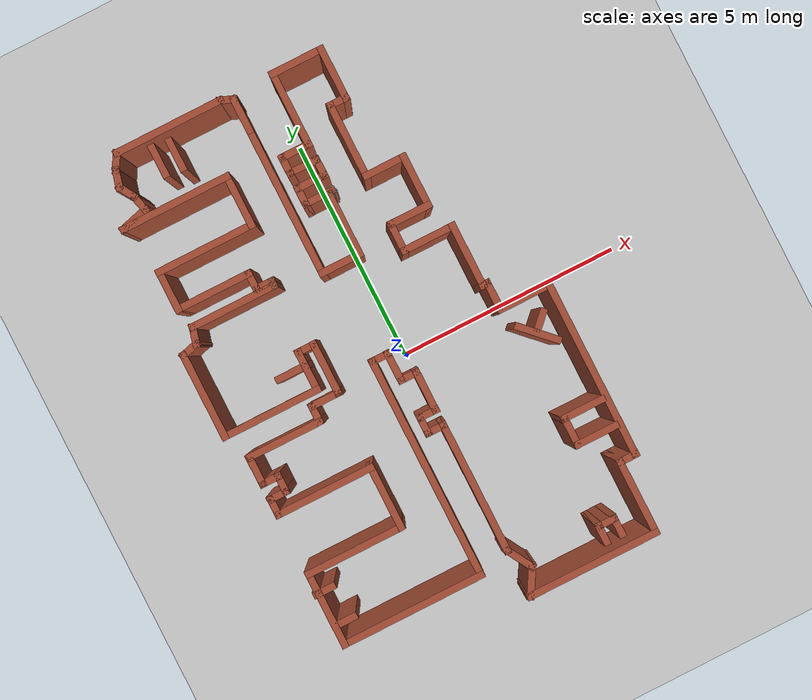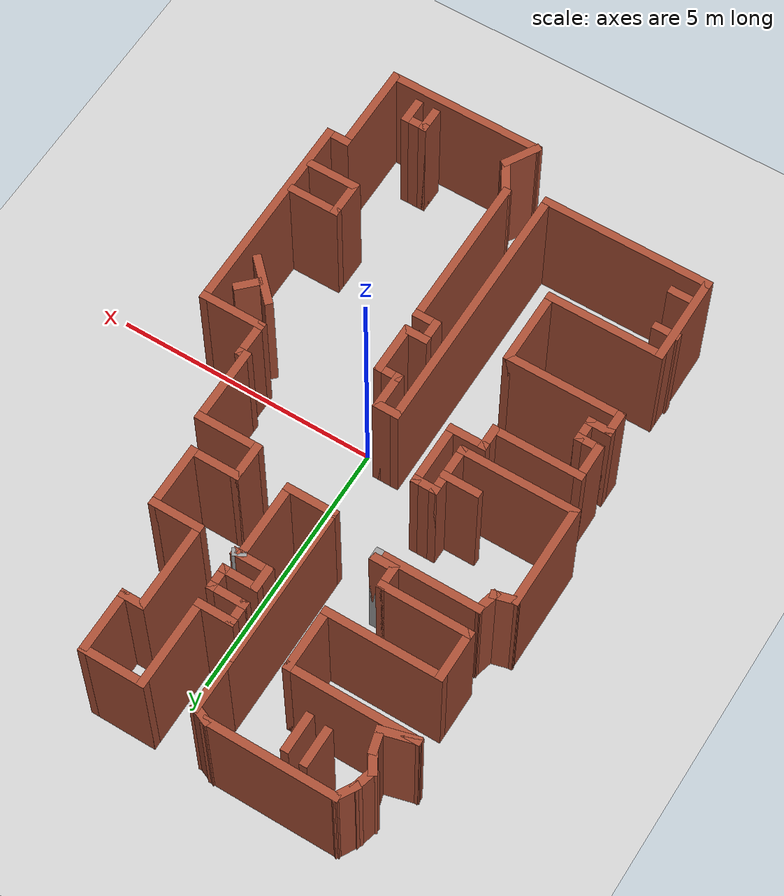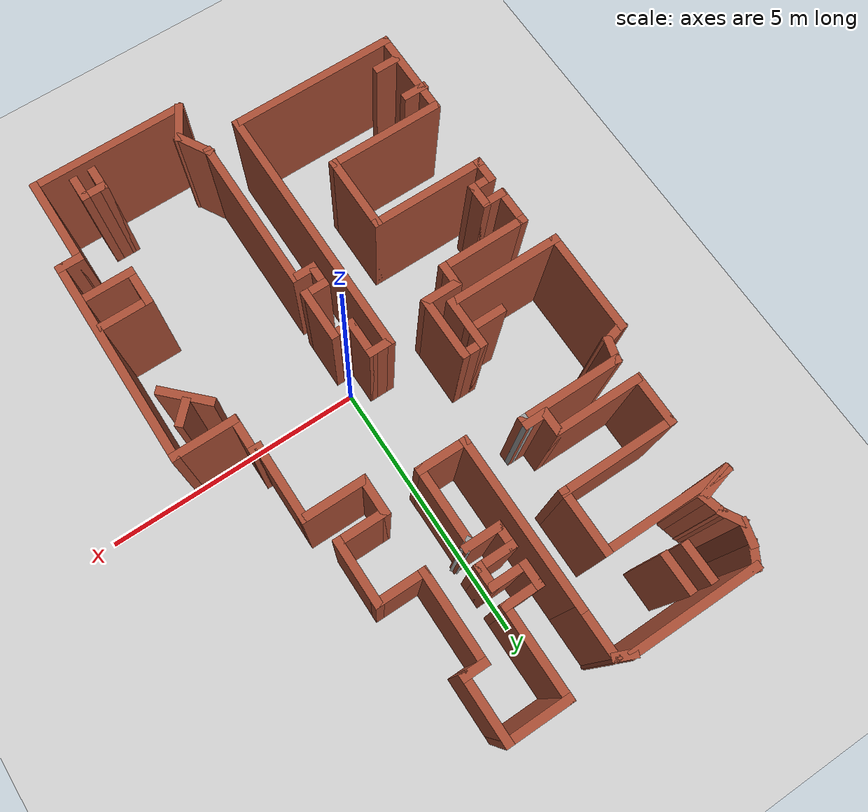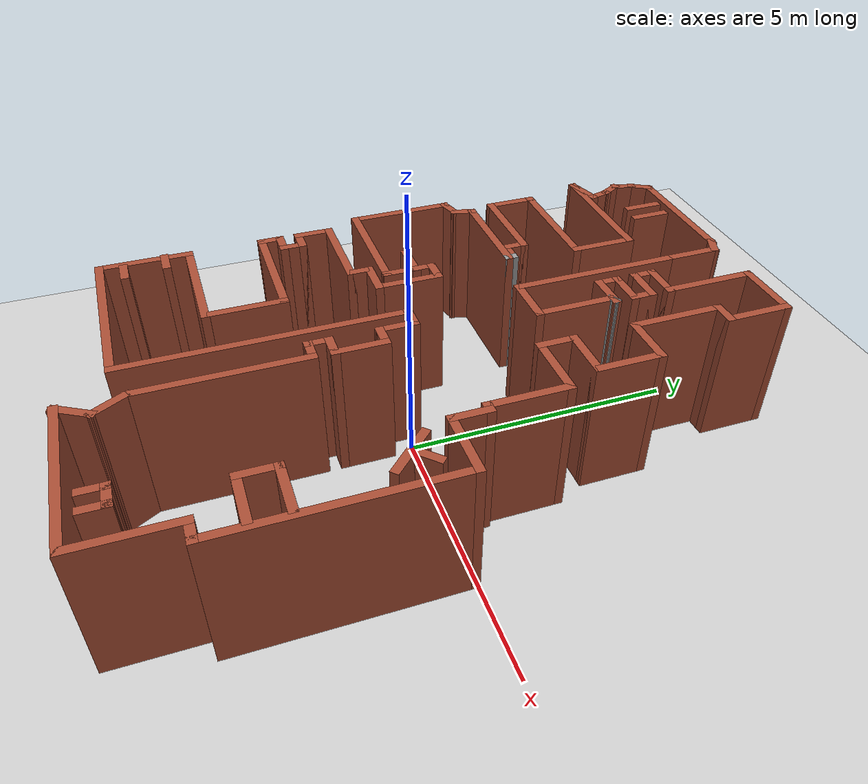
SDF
<sdf version="1.6">
 <world name="default">
  <model name="ground_plane">
   <static>1</static>
   <link name="link">
    <collision name="collision">
     <geometry><plane><normal>0 0 1</normal><size>100 100</size></plane></geometry>
     <surface>
      <contact><collide_bitmask>65535</collide_bitmask></contact>
      <friction><ode><mu>100</mu><mu2>50</mu2></ode></friction>
     </surface>
    </collision>
    <visual name="visual">
     <cast_shadows>0</cast_shadows>
     <geometry><plane><normal>0 0 1</normal><size>100 100</size></plane></geometry>
     <material>
      <script><uri>file://media/materials/scripts/gazebo.material</uri><name>Gazebo/Grey</name></script>
     </material>
    </visual>
   </link>
  </model>
  <model name="map_23">
   <pose>-0.42005 0.4067 0 0 -0 0</pose>
   <link name="Wall_10">
    <collision name="Wall_10_Collision">
     <geometry><box><size>0.5 0.15 2.5</size></box></geometry>
     <pose>0 0 1.25 0 -0 0</pose>
    </collision>
    <visual name="Wall_10_Visual">
     <pose>0 0 1.25 0 -0 0</pose>
     <geometry><box><size>0.5 0.15 2.5</size></box></geometry>
     <material>
      <script><uri>file://media/materials/scripts/gazebo.material</uri><name>Gazebo/Bricks</name></script>
      <ambient>1 1 1 1</ambient>
     </material>
     <meta><layer>0</layer></meta>
    </visual>
    <pose>-3.17865 5.43063 0 0 -0 -1.8326</pose>
   </link>
   <link name="Wall_100">
    <collision name="Wall_100_Collision">
     <geometry><box><size>0.426148 0.15 2.5</size></box></geometry>
     <pose>0 0 1.25 0 -0 0</pose>
    </collision>
    <visual name="Wall_100_Visual">
     <pose>0 0 1.25 0 -0 0</pose>
     <geometry><box><size>0.426148 0.15 2.5</size></box></geometry>
     <material>
      <script><uri>file://media/materials/scripts/gazebo.material</uri><name>Gazebo/Bricks</name></script>
      <ambient>1 1 1 1</ambient>
     </material>
     <meta><layer>0</layer></meta>
    </visual>
    <pose>-0.480765 5.85 0 0 -0 2.7494</pose>
   </link>
   <link name="Wall_102">
    <collision name="Wall_102_Collision">
     <geometry><box><size>0.5 0.15 2.5</size></box></geometry>
     <pose>0 0 1.25 0 -0 0</pose>
    </collision>
    <visual name="Wall_102_Visual">
     <pose>0 0 1.25 0 -0 0</pose>
     <geometry><box><size>0.5 0.15 2.5</size></box></geometry>
     <material>
      <script><uri>file://media/materials/scripts/gazebo.material</uri><name>Gazebo/Bricks</name></script>
      <ambient>1 1 1 1</ambient>
     </material>
     <meta><layer>0</layer></meta>
    </visual>
    <pose>2.3061 -5.44127 0 0 -0 1.5708</pose>
   </link>
   <link name="Wall_103">
    <collision name="Wall_103_Collision">
     <geometry><box><size>0.5 0.15 2.5</size></box></geometry>
     <pose>0 0 1.25 0 -0 0</pose>
    </collision>
    <visual name="Wall_103_Visual">
     <pose>0 0 1.25 0 -0 0</pose>
     <geometry><box><size>0.5 0.15 2.5</size></box></geometry>
     <material>
      <script><uri>file://media/materials/scripts/gazebo.material</uri><name>Gazebo/Bricks</name></script>
      <ambient>1 1 1 1</ambient>
     </material>
     <meta><layer>0</layer></meta>
    </visual>
    <pose>2.4811 -5.26627 0 0 -0 0</pose>
   </link>
   <link name="Wall_104">
    <collision name="Wall_104_Collision">
     <geometry><box><size>0.5 0.15 2.5</size></box></geometry>
     <pose>0 0 1.25 0 -0 0</pose>
    </collision>
    <visual name="Wall_104_Visual">
     <pose>0 0 1.25 0 -0 0</pose>
     <geometry><box><size>0.5 0.15 2.5</size></box></geometry>
     <material>
      <script><uri>file://media/materials/scripts/gazebo.material</uri><name>Gazebo/Bricks</name></script>
      <ambient>1 1 1 1</ambient>
     </material>
     <meta><layer>0</layer></meta>
    </visual>
    <pose>2.6561 -5.44127 0 0 -0 -1.5708</pose>
   </link>
   <link name="Wall_106">
    <collision name="Wall_106_Collision">
     <geometry><box><size>1 0.15 2.5</size></box></geometry>
     <pose>0 0 1.25 0 -0 0</pose>
    </collision>
    <visual name="Wall_106_Visual">
     <pose>0 0 1.25 0 -0 0</pose>
     <geometry><box><size>1 0.15 2.5</size></box></geometry>
     <material>
      <script><uri>file://media/materials/scripts/gazebo.material</uri><name>Gazebo/Bricks</name></script>
      <ambient>1 1 1 1</ambient>
     </material>
     <meta><layer>0</layer></meta>
    </visual>
    <pose>3.10702 -3.00251 0 0 -0 3.14159</pose>
   </link>
   <link name="Wall_107">
    <collision name="Wall_107_Collision">
     <geometry><box><size>0.75 0.15 2.5</size></box></geometry>
     <pose>0 0 1.25 0 -0 0</pose>
    </collision>
    <visual name="Wall_107_Visual">
     <pose>0 0 1.25 0 -0 0</pose>
     <geometry><box><size>0.75 0.15 2.5</size></box></geometry>
     <material>
      <script><uri>file://media/materials/scripts/gazebo.material</uri><name>Gazebo/Bricks</name></script>
      <ambient>1 1 1 1</ambient>
     </material>
     <meta><layer>0</layer></meta>
    </visual>
    <pose>2.68202 -3.30251 0 0 -0 -1.5708</pose>
   </link>
   <link name="Wall_108">
    <collision name="Wall_108_Collision">
     <geometry><box><size>1 0.15 2.5</size></box></geometry>
     <pose>0 0 1.25 0 -0 0</pose>
    </collision>
    <visual name="Wall_108_Visual">
     <pose>0 0 1.25 0 -0 0</pose>
     <geometry><box><size>1 0.15 2.5</size></box></geometry>
     <material>
      <script><uri>file://media/materials/scripts/gazebo.material</uri><name>Gazebo/Bricks</name></script>
      <ambient>1 1 1 1</ambient>
     </material>
     <meta><layer>0</layer></meta>
    </visual>
    <pose>3.10702 -3.60251 0 0 -0 0</pose>
   </link>
   <link name="Wall_11">
    <collision name="Wall_11_Collision">
     <geometry><box><size>0.5 0.15 2.5</size></box></geometry>
     <pose>0 0 1.25 0 -0 0</pose>
    </collision>
    <visual name="Wall_11_Visual">
     <pose>0 0 1.25 0 -0 0</pose>
     <geometry><box><size>0.5 0.15 2.5</size></box></geometry>
     <material>
      <script><uri>file://media/materials/scripts/gazebo.material</uri><name>Gazebo/Bricks</name></script>
      <ambient>1 1 1 1</ambient>
     </material>
     <meta><layer>0</layer></meta>
    </visual>
    <pose>-3.13644 5.11004 0 0 -0 -1.0472</pose>
   </link>
   <link name="Wall_110">
    <collision name="Wall_110_Collision">
     <geometry><box><size>0.5 0.15 2.5</size></box></geometry>
     <pose>0 0 1.25 0 -0 0</pose>
    </collision>
    <visual name="Wall_110_Visual">
     <pose>0 0 1.25 0 -0 0</pose>
     <geometry><box><size>0.5 0.15 2.5</size></box></geometry>
     <material>
      <script><uri>file://media/materials/scripts/gazebo.material</uri><name>Gazebo/Bricks</name></script>
      <ambient>1 1 1 1</ambient>
     </material>
     <meta><layer>0</layer></meta>
    </visual>
    <pose>-3.23216 -3.9046 0 0 -0 0</pose>
   </link>
   <link name="Wall_112">
    <collision name="Wall_112_Collision">
     <geometry><box><size>0.5 0.15 2.5</size></box></geometry>
     <pose>0 0 1.25 0 -0 0</pose>
    </collision>
    <visual name="Wall_112_Visual">
     <pose>0 0 1.25 0 -0 0</pose>
     <geometry><box><size>0.5 0.15 2.5</size></box></geometry>
     <material>
      <script><uri>file://media/materials/scripts/gazebo.material</uri><name>Gazebo/Bricks</name></script>
      <ambient>1 1 1 1</ambient>
     </material>
     <meta><layer>0</layer></meta>
    </visual>
    <pose>-3.11651 -4.64478 0 0 -0 0</pose>
   </link>
   <link name="Wall_116">
    <collision name="Wall_116_Collision">
     <geometry><box><size>0.75 0.15 2.5</size></box></geometry>
     <pose>0 0 1.25 0 -0 0</pose>
    </collision>
    <visual name="Wall_116_Visual">
     <pose>0 0 1.25 0 -0 0</pose>
     <geometry><box><size>0.75 0.15 2.5</size></box></geometry>
     <material>
      <script><uri>file://media/materials/scripts/gazebo.material</uri><name>Gazebo/Bricks</name></script>
      <ambient>1 1 1 1</ambient>
     </material>
     <meta><layer>0</layer></meta>
    </visual>
    <pose>-1.81045 0.328298 0 0 -0 3.14159</pose>
   </link>
   <link name="Wall_12">
    <collision name="Wall_12_Collision">
     <geometry><box><size>0.5 0.15 2.5</size></box></geometry>
     <pose>0 0 1.25 0 -0 0</pose>
    </collision>
    <visual name="Wall_12_Visual">
     <pose>0 0 1.25 0 -0 0</pose>
     <geometry><box><size>0.5 0.15 2.5</size></box></geometry>
     <material>
      <script><uri>file://media/materials/scripts/gazebo.material</uri><name>Gazebo/Bricks</name></script>
      <ambient>1 1 1 1</ambient>
     </material>
     <meta><layer>0</layer></meta>
    </visual>
    <pose>-3.00365 4.78944 0 0 -0 -1.309</pose>
   </link>
   <link name="Wall_120">
    <collision name="Wall_120_Collision">
     <geometry><box><size>0.75 0.15 2.5</size></box></geometry>
     <pose>0 0 1.25 0 -0 0</pose>
    </collision>
    <visual name="Wall_120_Visual">
     <pose>0 0 1.25 0 -0 0</pose>
     <geometry><box><size>0.75 0.15 2.5</size></box></geometry>
     <material>
      <script><uri>file://media/materials/scripts/gazebo.material</uri><name>Gazebo/Bricks</name></script>
      <ambient>1 1 1 1</ambient>
     </material>
     <meta><layer>0</layer></meta>
    </visual>
    <pose>-2.27376 5.37147 0 0 -0 -1.5708</pose>
   </link>
   <link name="Wall_122">
    <collision name="Wall_122_Collision">
     <geometry><box><size>0.75 0.15 2.5</size></box></geometry>
     <pose>0 0 1.25 0 -0 0</pose>
    </collision>
    <visual name="Wall_122_Visual">
     <pose>0 0 1.25 0 -0 0</pose>
     <geometry><box><size>0.75 0.15 2.5</size></box></geometry>
     <material>
      <script><uri>file://media/materials/scripts/gazebo.material</uri><name>Gazebo/Bricks</name></script>
      <ambient>1 1 1 1</ambient>
     </material>
     <meta><layer>0</layer></meta>
    </visual>
    <pose>-1.90367 5.32521 0 0 -0 -1.5708</pose>
   </link>
   <link name="Wall_124">
    <collision name="Wall_124_Collision">
     <geometry><box><size>1 0.15 2.5</size></box></geometry>
     <pose>0 0 1.25 0 -0 0</pose>
    </collision>
    <visual name="Wall_124_Visual">
     <pose>0 0 1.25 0 -0 0</pose>
     <geometry><box><size>1 0.15 2.5</size></box></geometry>
     <material>
      <script><uri>file://media/materials/scripts/gazebo.material</uri><name>Gazebo/Bricks</name></script>
      <ambient>1 1 1 1</ambient>
     </material>
     <meta><layer>0</layer></meta>
    </visual>
    <pose>2.98805 -1.22193 0 0 -0 -0.785398</pose>
   </link>
   <link name="Wall_126">
    <collision name="Wall_126_Collision">
     <geometry><box><size>0.5 0.15 2.5</size></box></geometry>
     <pose>0 0 1.25 0 -0 0</pose>
    </collision>
    <visual name="Wall_126_Visual">
     <pose>0 0 1.25 0 -0 0</pose>
     <geometry><box><size>0.5 0.15 2.5</size></box></geometry>
     <material>
      <script><uri>file://media/materials/scripts/gazebo.material</uri><name>Gazebo/Bricks</name></script>
      <ambient>1 1 1 1</ambient>
     </material>
     <meta><layer>0</layer></meta>
    </visual>
    <pose>3.15707 -1.01047 0 0 -0 0.785398</pose>
   </link>
   <link name="Wall_13">
    <collision name="Wall_13_Collision">
     <geometry><box><size>0.75 0.15 2.5</size></box></geometry>
     <pose>0 0 1.25 0 -0 0</pose>
    </collision>
    <visual name="Wall_13_Visual">
     <pose>0 0 1.25 0 -0 0</pose>
     <geometry><box><size>0.75 0.15 2.5</size></box></geometry>
     <material>
      <script><uri>file://media/materials/scripts/gazebo.material</uri><name>Gazebo/Bricks</name></script>
      <ambient>1 1 1 1</ambient>
     </material>
     <meta><layer>0</layer></meta>
    </visual>
    <pose>-3.24813 4.54276 0 0 -0 -2.87979</pose>
   </link>
   <link name="Wall_14">
    <collision name="Wall_14_Collision">
     <geometry><box><size>2.5 0.15 2.5</size></box></geometry>
     <pose>0 0 1.25 0 -0 0</pose>
    </collision>
    <visual name="Wall_14_Visual">
     <pose>0 0 1.25 0 -0 0</pose>
     <geometry><box><size>2.5 0.15 2.5</size></box></geometry>
     <material>
      <script><uri>file://media/materials/scripts/gazebo.material</uri><name>Gazebo/Bricks</name></script>
      <ambient>1 1 1 1</ambient>
     </material>
     <meta><layer>0</layer></meta>
    </visual>
    <pose>-2.36291 4.46512 0 0 -0 0</pose>
   </link>
   <link name="Wall_15">
    <collision name="Wall_15_Collision">
     <geometry><box><size>1.25 0.15 2.5</size></box></geometry>
     <pose>0 0 1.25 0 -0 0</pose>
    </collision>
    <visual name="Wall_15_Visual">
     <pose>0 0 1.25 0 -0 0</pose>
     <geometry><box><size>1.25 0.15 2.5</size></box></geometry>
     <material>
      <script><uri>file://media/materials/scripts/gazebo.material</uri><name>Gazebo/Bricks</name></script>
      <ambient>1 1 1 1</ambient>
     </material>
     <meta><layer>0</layer></meta>
    </visual>
    <pose>-1.18791 3.91512 0 0 -0 -1.5708</pose>
   </link>
   <link name="Wall_16">
    <collision name="Wall_16_Collision">
     <geometry><box><size>2.25 0.15 2.5</size></box></geometry>
     <pose>0 0 1.25 0 -0 0</pose>
    </collision>
    <visual name="Wall_16_Visual">
     <pose>0 0 1.25 0 -0 0</pose>
     <geometry><box><size>2.25 0.15 2.5</size></box></geometry>
     <material>
      <script><uri>file://media/materials/scripts/gazebo.material</uri><name>Gazebo/Bricks</name></script>
      <ambient>1 1 1 1</ambient>
     </material>
     <meta><layer>0</layer></meta>
    </visual>
    <pose>-2.23791 3.36512 0 0 -0 3.14159</pose>
   </link>
   <link name="Wall_19">
    <collision name="Wall_19_Collision">
     <geometry><box><size>1 0.15 2.5</size></box></geometry>
     <pose>0 0 1.25 0 -0 0</pose>
    </collision>
    <visual name="Wall_19_Visual">
     <pose>0 0 1.25 0 -0 0</pose>
     <geometry><box><size>1 0.15 2.5</size></box></geometry>
     <material>
      <script><uri>file://media/materials/scripts/gazebo.material</uri><name>Gazebo/Bricks</name></script>
      <ambient>1 1 1 1</ambient>
     </material>
     <meta><layer>0</layer></meta>
    </visual>
    <pose>-3.28791 2.94012 0 0 -0 -1.5708</pose>
   </link>
   <link name="Wall_20">
    <collision name="Wall_20_Collision">
     <geometry><box><size>1.75 0.15 2.5</size></box></geometry>
     <pose>0 0 1.25 0 -0 0</pose>
    </collision>
    <visual name="Wall_20_Visual">
     <pose>0 0 1.25 0 -0 0</pose>
     <geometry><box><size>1.75 0.15 2.5</size></box></geometry>
     <material>
      <script><uri>file://media/materials/scripts/gazebo.material</uri><name>Gazebo/Bricks</name></script>
      <ambient>1 1 1 1</ambient>
     </material>
     <meta><layer>0</layer></meta>
    </visual>
    <pose>-2.48791 2.51512 0 0 -0 0</pose>
   </link>
   <link name="Wall_21">
    <collision name="Wall_21_Collision">
     <geometry><box><size>0.5 0.15 2.5</size></box></geometry>
     <pose>0 0 1.25 0 -0 0</pose>
    </collision>
    <visual name="Wall_21_Visual">
     <pose>0 0 1.25 0 -0 0</pose>
     <geometry><box><size>0.5 0.15 2.5</size></box></geometry>
     <material>
      <script><uri>file://media/materials/scripts/gazebo.material</uri><name>Gazebo/Bricks</name></script>
      <ambient>1 1 1 1</ambient>
     </material>
     <meta><layer>0</layer></meta>
    </visual>
    <pose>-1.68791 2.34012 0 0 -0 -1.5708</pose>
   </link>
   <link name="Wall_22">
    <collision name="Wall_22_Collision">
     <geometry><box><size>0.5 0.15 2.5</size></box></geometry>
     <pose>0 0 1.25 0 -0 0</pose>
    </collision>
    <visual name="Wall_22_Visual">
     <pose>0 0 1.25 0 -0 0</pose>
     <geometry><box><size>0.5 0.15 2.5</size></box></geometry>
     <material>
      <script><uri>file://media/materials/scripts/gazebo.material</uri><name>Gazebo/Bricks</name></script>
      <ambient>1 1 1 1</ambient>
     </material>
     <meta><layer>0</layer></meta>
    </visual>
    <pose>-1.51291 2.16512 0 0 -0 0</pose>
   </link>
   <link name="Wall_23">
    <collision name="Wall_23_Collision">
     <geometry><box><size>0.25 0.15 2.5</size></box></geometry>
     <pose>0 0 1.25 0 -0 0</pose>
    </collision>
    <visual name="Wall_23_Visual">
     <pose>0 0 1.25 0 -0 0</pose>
     <geometry><box><size>0.25 0.15 2.5</size></box></geometry>
     <material>
      <script><uri>file://media/materials/scripts/gazebo.material</uri><name>Gazebo/Grey</name></script>
      <ambient>1 1 1 1</ambient>
     </material>
     <meta><layer>0</layer></meta>
    </visual>
    <pose>-1.33791 2.11512 0 0 -0 -1.5708</pose>
   </link>
   <link name="Wall_24">
    <collision name="Wall_24_Collision">
     <geometry><box><size>2 0.15 2.5</size></box></geometry>
     <pose>0 0 1.25 0 -0 0</pose>
    </collision>
    <visual name="Wall_24_Visual">
     <pose>0 0 1.25 0 -0 0</pose>
     <geometry><box><size>2 0.15 2.5</size></box></geometry>
     <material>
      <script><uri>file://media/materials/scripts/gazebo.material</uri><name>Gazebo/Bricks</name></script>
      <ambient>1 1 1 1</ambient>
     </material>
     <meta><layer>0</layer></meta>
    </visual>
    <pose>-2.26291 2.06512 0 0 -0 3.14159</pose>
   </link>
   <link name="Wall_25">
    <collision name="Wall_25_Collision">
     <geometry><box><size>0.5 0.15 2.5</size></box></geometry>
     <pose>0 0 1.25 0 -0 0</pose>
    </collision>
    <visual name="Wall_25_Visual">
     <pose>0 0 1.25 0 -0 0</pose>
     <geometry><box><size>0.5 0.15 2.5</size></box></geometry>
     <material>
      <script><uri>file://media/materials/scripts/gazebo.material</uri><name>Gazebo/Bricks</name></script>
      <ambient>1 1 1 1</ambient>
     </material>
     <meta><layer>0</layer></meta>
    </visual>
    <pose>-3.2332 1.89608 0 0 -0 -1.8326</pose>
   </link>
   <link name="Wall_26">
    <collision name="Wall_26_Collision">
     <geometry><box><size>0.5 0.15 2.5</size></box></geometry>
     <pose>0 0 1.25 0 -0 0</pose>
    </collision>
    <visual name="Wall_26_Visual">
     <pose>0 0 1.25 0 -0 0</pose>
     <geometry><box><size>0.5 0.15 2.5</size></box></geometry>
     <material>
      <script><uri>file://media/materials/scripts/gazebo.material</uri><name>Gazebo/Bricks</name></script>
      <ambient>1 1 1 1</ambient>
     </material>
     <meta><layer>0</layer></meta>
    </visual>
    <pose>-3.44753 1.68175 0 0 -0 -2.87979</pose>
   </link>
   <link name="Wall_27">
    <collision name="Wall_27_Collision">
     <geometry><box><size>2 0.15 2.5</size></box></geometry>
     <pose>0 0 1.25 0 -0 0</pose>
    </collision>
    <visual name="Wall_27_Visual">
     <pose>0 0 1.25 0 -0 0</pose>
     <geometry><box><size>2 0.15 2.5</size></box></geometry>
     <material>
      <script><uri>file://media/materials/scripts/gazebo.material</uri><name>Gazebo/Bricks</name></script>
      <ambient>1 1 1 1</ambient>
     </material>
     <meta><layer>0</layer></meta>
    </visual>
    <pose>-3.61657 0.711456 0 0 -0 -1.5708</pose>
   </link>
   <link name="Wall_28">
    <collision name="Wall_28_Collision">
     <geometry><box><size>2.25 0.15 2.5</size></box></geometry>
     <pose>0 0 1.25 0 -0 0</pose>
    </collision>
    <visual name="Wall_28_Visual">
     <pose>0 0 1.25 0 -0 0</pose>
     <geometry><box><size>2.25 0.15 2.5</size></box></geometry>
     <material>
      <script><uri>file://media/materials/scripts/gazebo.material</uri><name>Gazebo/Bricks</name></script>
      <ambient>1 1 1 1</ambient>
     </material>
     <meta><layer>0</layer></meta>
    </visual>
    <pose>-2.56657 -0.213544 0 0 -0 0</pose>
   </link>
   <link name="Wall_29">
    <collision name="Wall_29_Collision">
     <geometry><box><size>1 0.15 2.5</size></box></geometry>
     <pose>0 0 1.25 0 -0 0</pose>
    </collision>
    <visual name="Wall_29_Visual">
     <pose>0 0 1.25 0 -0 0</pose>
     <geometry><box><size>1 0.15 2.5</size></box></geometry>
     <material>
      <script><uri>file://media/materials/scripts/gazebo.material</uri><name>Gazebo/Bricks</name></script>
      <ambient>1 1 1 1</ambient>
     </material>
     <meta><layer>0</layer></meta>
    </visual>
    <pose>-1.51657 0.211456 0 0 -0 1.5708</pose>
   </link>
   <link name="Wall_32">
    <collision name="Wall_32_Collision">
     <geometry><box><size>0.5 0.15 2.5</size></box></geometry>
     <pose>0 0 1.25 0 -0 0</pose>
    </collision>
    <visual name="Wall_32_Visual">
     <pose>0 0 1.25 0 -0 0</pose>
     <geometry><box><size>0.5 0.15 2.5</size></box></geometry>
     <material>
      <script><uri>file://media/materials/scripts/gazebo.material</uri><name>Gazebo/Bricks</name></script>
      <ambient>1 1 1 1</ambient>
     </material>
     <meta><layer>0</layer></meta>
    </visual>
    <pose>-1.34157 0.636456 0 0 -0 0</pose>
   </link>
   <link name="Wall_33">
    <collision name="Wall_33_Collision">
     <geometry><box><size>1.25 0.15 2.5</size></box></geometry>
     <pose>0 0 1.25 0 -0 0</pose>
    </collision>
    <visual name="Wall_33_Visual">
     <pose>0 0 1.25 0 -0 0</pose>
     <geometry><box><size>1.25 0.15 2.5</size></box></geometry>
     <material>
      <script><uri>file://media/materials/scripts/gazebo.material</uri><name>Gazebo/Bricks</name></script>
      <ambient>1 1 1 1</ambient>
     </material>
     <meta><layer>0</layer></meta>
    </visual>
    <pose>-1.16657 0.086456 0 0 -0 -1.5708</pose>
   </link>
   <link name="Wall_34">
    <collision name="Wall_34_Collision">
     <geometry><box><size>0.75 0.15 2.5</size></box></geometry>
     <pose>0 0 1.25 0 -0 0</pose>
    </collision>
    <visual name="Wall_34_Visual">
     <pose>0 0 1.25 0 -0 0</pose>
     <geometry><box><size>0.75 0.15 2.5</size></box></geometry>
     <material>
      <script><uri>file://media/materials/scripts/gazebo.material</uri><name>Gazebo/Bricks</name></script>
      <ambient>1 1 1 1</ambient>
     </material>
     <meta><layer>0</layer></meta>
    </visual>
    <pose>-1.46657 -0.463544 0 0 -0 3.14159</pose>
   </link>
   <link name="Wall_35">
    <collision name="Wall_35_Collision">
     <geometry><box><size>0.5 0.15 2.5</size></box></geometry>
     <pose>0 0 1.25 0 -0 0</pose>
    </collision>
    <visual name="Wall_35_Visual">
     <pose>0 0 1.25 0 -0 0</pose>
     <geometry><box><size>0.5 0.15 2.5</size></box></geometry>
     <material>
      <script><uri>file://media/materials/scripts/gazebo.material</uri><name>Gazebo/Bricks</name></script>
      <ambient>1 1 1 1</ambient>
     </material>
     <meta><layer>0</layer></meta>
    </visual>
    <pose>-1.76657 -0.638544 0 0 -0 -1.5708</pose>
   </link>
   <link name="Wall_36">
    <collision name="Wall_36_Collision">
     <geometry><box><size>1.75 0.15 2.5</size></box></geometry>
     <pose>0 0 1.25 0 -0 0</pose>
    </collision>
    <visual name="Wall_36_Visual">
     <pose>0 0 1.25 0 -0 0</pose>
     <geometry><box><size>1.75 0.15 2.5</size></box></geometry>
     <material>
      <script><uri>file://media/materials/scripts/gazebo.material</uri><name>Gazebo/Bricks</name></script>
      <ambient>1 1 1 1</ambient>
     </material>
     <meta><layer>0</layer></meta>
    </visual>
    <pose>-2.56657 -0.813544 0 0 -0 3.14159</pose>
   </link>
   <link name="Wall_41">
    <collision name="Wall_41_Collision">
     <geometry><box><size>0.75 0.15 2.5</size></box></geometry>
     <pose>0 0 1.25 0 -0 0</pose>
    </collision>
    <visual name="Wall_41_Visual">
     <pose>0 0 1.25 0 -0 0</pose>
     <geometry><box><size>0.75 0.15 2.5</size></box></geometry>
     <material>
      <script><uri>file://media/materials/scripts/gazebo.material</uri><name>Gazebo/Bricks</name></script>
      <ambient>1 1 1 1</ambient>
     </material>
     <meta><layer>0</layer></meta>
    </visual>
    <pose>-3.36657 -1.11354 0 0 -0 -1.5708</pose>
   </link>
   <link name="Wall_42">
    <collision name="Wall_42_Collision">
     <geometry><box><size>0.5 0.15 2.5</size></box></geometry>
     <pose>0 0 1.25 0 -0 0</pose>
    </collision>
    <visual name="Wall_42_Visual">
     <pose>0 0 1.25 0 -0 0</pose>
     <geometry><box><size>0.5 0.15 2.5</size></box></geometry>
     <material>
      <script><uri>file://media/materials/scripts/gazebo.material</uri><name>Gazebo/Bricks</name></script>
      <ambient>1 1 1 1</ambient>
     </material>
     <meta><layer>0</layer></meta>
    </visual>
    <pose>-3.19157 -1.41354 0 0 -0 0</pose>
   </link>
   <link name="Wall_43">
    <collision name="Wall_43_Collision">
     <geometry><box><size>0.5 0.15 2.5</size></box></geometry>
     <pose>0 0 1.25 0 -0 0</pose>
    </collision>
    <visual name="Wall_43_Visual">
     <pose>0 0 1.25 0 -0 0</pose>
     <geometry><box><size>0.5 0.15 2.5</size></box></geometry>
     <material>
      <script><uri>file://media/materials/scripts/gazebo.material</uri><name>Gazebo/Bricks</name></script>
      <ambient>1 1 1 1</ambient>
     </material>
     <meta><layer>0</layer></meta>
    </visual>
    <pose>-3.01657 -1.58854 0 0 -0 -1.5708</pose>
   </link>
   <link name="Wall_44">
    <collision name="Wall_44_Collision">
     <geometry><box><size>0.5 0.15 2.5</size></box></geometry>
     <pose>0 0 1.25 0 -0 0</pose>
    </collision>
    <visual name="Wall_44_Visual">
     <pose>0 0 1.25 0 -0 0</pose>
     <geometry><box><size>0.5 0.15 2.5</size></box></geometry>
     <material>
      <script><uri>file://media/materials/scripts/gazebo.material</uri><name>Gazebo/Bricks</name></script>
      <ambient>1 1 1 1</ambient>
     </material>
     <meta><layer>0</layer></meta>
    </visual>
    <pose>-3.19157 -1.76354 0 0 -0 3.14159</pose>
   </link>
   <link name="Wall_45">
    <collision name="Wall_45_Collision">
     <geometry><box><size>0.5 0.15 2.5</size></box></geometry>
     <pose>0 0 1.25 0 -0 0</pose>
    </collision>
    <visual name="Wall_45_Visual">
     <pose>0 0 1.25 0 -0 0</pose>
     <geometry><box><size>0.5 0.15 2.5</size></box></geometry>
     <material>
      <script><uri>file://media/materials/scripts/gazebo.material</uri><name>Gazebo/Bricks</name></script>
      <ambient>1 1 1 1</ambient>
     </material>
     <meta><layer>0</layer></meta>
    </visual>
    <pose>-3.36657 -1.93854 0 0 -0 -1.5708</pose>
   </link>
   <link name="Wall_46">
    <collision name="Wall_46_Collision">
     <geometry><box><size>2.25 0.15 2.5</size></box></geometry>
     <pose>0 0 1.25 0 -0 0</pose>
    </collision>
    <visual name="Wall_46_Visual">
     <pose>0 0 1.25 0 -0 0</pose>
     <geometry><box><size>2.25 0.15 2.5</size></box></geometry>
     <material>
      <script><uri>file://media/materials/scripts/gazebo.material</uri><name>Gazebo/Bricks</name></script>
      <ambient>1 1 1 1</ambient>
     </material>
     <meta><layer>0</layer></meta>
    </visual>
    <pose>-2.31657 -2.11354 0 0 -0 0</pose>
   </link>
   <link name="Wall_47">
    <collision name="Wall_47_Collision">
     <geometry><box><size>1.5 0.15 2.5</size></box></geometry>
     <pose>0 0 1.25 0 -0 0</pose>
    </collision>
    <visual name="Wall_47_Visual">
     <pose>0 0 1.25 0 -0 0</pose>
     <geometry><box><size>1.5 0.15 2.5</size></box></geometry>
     <material>
      <script><uri>file://media/materials/scripts/gazebo.material</uri><name>Gazebo/Bricks</name></script>
      <ambient>1 1 1 1</ambient>
     </material>
     <meta><layer>0</layer></meta>
    </visual>
    <pose>-1.26657 -2.78854 0 0 -0 -1.5708</pose>
   </link>
   <link name="Wall_48">
    <collision name="Wall_48_Collision">
     <geometry><box><size>2.25 0.15 2.5</size></box></geometry>
     <pose>0 0 1.25 0 -0 0</pose>
    </collision>
    <visual name="Wall_48_Visual">
     <pose>0 0 1.25 0 -0 0</pose>
     <geometry><box><size>2.25 0.15 2.5</size></box></geometry>
     <material>
      <script><uri>file://media/materials/scripts/gazebo.material</uri><name>Gazebo/Bricks</name></script>
      <ambient>1 1 1 1</ambient>
     </material>
     <meta><layer>0</layer></meta>
    </visual>
    <pose>-2.31657 -3.46354 0 0 -0 3.14159</pose>
   </link>
   <link name="Wall_49">
    <collision name="Wall_49_Collision">
     <geometry><box><size>1.75 0.15 2.5</size></box></geometry>
     <pose>0 0 1.25 0 -0 0</pose>
    </collision>
    <visual name="Wall_49_Visual">
     <pose>0 0 1.25 0 -0 0</pose>
     <geometry><box><size>1.75 0.15 2.5</size></box></geometry>
     <material>
      <script><uri>file://media/materials/scripts/gazebo.material</uri><name>Gazebo/Bricks</name></script>
      <ambient>1 1 1 1</ambient>
     </material>
     <meta><layer>0</layer></meta>
    </visual>
    <pose>-3.36657 -4.26354 0 0 -0 -1.5708</pose>
   </link>
   <link name="Wall_50">
    <collision name="Wall_50_Collision">
     <geometry><box><size>3.25 0.15 2.5</size></box></geometry>
     <pose>0 0 1.25 0 -0 0</pose>
    </collision>
    <visual name="Wall_50_Visual">
     <pose>0 0 1.25 0 -0 0</pose>
     <geometry><box><size>3.25 0.15 2.5</size></box></geometry>
     <material>
      <script><uri>file://media/materials/scripts/gazebo.material</uri><name>Gazebo/Bricks</name></script>
      <ambient>1 1 1 1</ambient>
     </material>
     <meta><layer>0</layer></meta>
    </visual>
    <pose>-1.81657 -5.06354 0 0 -0 0</pose>
   </link>
   <link name="Wall_51">
    <collision name="Wall_51_Collision">
     <geometry><box><size>5 0.15 2.5</size></box></geometry>
     <pose>0 0 1.25 0 -0 0</pose>
    </collision>
    <visual name="Wall_51_Visual">
     <pose>0 0 1.25 0 -0 0</pose>
     <geometry><box><size>5 0.15 2.5</size></box></geometry>
     <material>
      <script><uri>file://media/materials/scripts/gazebo.material</uri><name>Gazebo/Bricks</name></script>
      <ambient>1 1 1 1</ambient>
     </material>
     <meta><layer>0</layer></meta>
    </visual>
    <pose>-0.266572 -2.63854 0 0 -0 1.5708</pose>
   </link>
   <link name="Wall_52">
    <collision name="Wall_52_Collision">
     <geometry><box><size>0.5 0.15 2.5</size></box></geometry>
     <pose>0 0 1.25 0 -0 0</pose>
    </collision>
    <visual name="Wall_52_Visual">
     <pose>0 0 1.25 0 -0 0</pose>
     <geometry><box><size>0.5 0.15 2.5</size></box></geometry>
     <material>
      <script><uri>file://media/materials/scripts/gazebo.material</uri><name>Gazebo/Bricks</name></script>
      <ambient>1 1 1 1</ambient>
     </material>
     <meta><layer>0</layer></meta>
    </visual>
    <pose>-0.091572 -0.213544 0 0 -0 0</pose>
   </link>
   <link name="Wall_53">
    <collision name="Wall_53_Collision">
     <geometry><box><size>0.75 0.15 2.5</size></box></geometry>
     <pose>0 0 1.25 0 -0 0</pose>
    </collision>
    <visual name="Wall_53_Visual">
     <pose>0 0 1.25 0 -0 0</pose>
     <geometry><box><size>0.75 0.15 2.5</size></box></geometry>
     <material>
      <script><uri>file://media/materials/scripts/gazebo.material</uri><name>Gazebo/Bricks</name></script>
      <ambient>1 1 1 1</ambient>
     </material>
     <meta><layer>0</layer></meta>
    </visual>
    <pose>0.083428 -0.513544 0 0 -0 -1.5708</pose>
   </link>
   <link name="Wall_54">
    <collision name="Wall_54_Collision">
     <geometry><box><size>0.5 0.15 2.5</size></box></geometry>
     <pose>0 0 1.25 0 -0 0</pose>
    </collision>
    <visual name="Wall_54_Visual">
     <pose>0 0 1.25 0 -0 0</pose>
     <geometry><box><size>0.5 0.15 2.5</size></box></geometry>
     <material>
      <script><uri>file://media/materials/scripts/gazebo.material</uri><name>Gazebo/Bricks</name></script>
      <ambient>1 1 1 1</ambient>
     </material>
     <meta><layer>0</layer></meta>
    </visual>
    <pose>0.258428 -0.813544 0 0 -0 0</pose>
   </link>
   <link name="Wall_55">
    <collision name="Wall_55_Collision">
     <geometry><box><size>1 0.15 2.5</size></box></geometry>
     <pose>0 0 1.25 0 -0 0</pose>
    </collision>
    <visual name="Wall_55_Visual">
     <pose>0 0 1.25 0 -0 0</pose>
     <geometry><box><size>1 0.15 2.5</size></box></geometry>
     <material>
      <script><uri>file://media/materials/scripts/gazebo.material</uri><name>Gazebo/Bricks</name></script>
      <ambient>1 1 1 1</ambient>
     </material>
     <meta><layer>0</layer></meta>
    </visual>
    <pose>0.433428 -1.23854 0 0 -0 -1.5708</pose>
   </link>
   <link name="Wall_56">
    <collision name="Wall_56_Collision">
     <geometry><box><size>0.5 0.15 2.5</size></box></geometry>
     <pose>0 0 1.25 0 -0 0</pose>
    </collision>
    <visual name="Wall_56_Visual">
     <pose>0 0 1.25 0 -0 0</pose>
     <geometry><box><size>0.5 0.15 2.5</size></box></geometry>
     <material>
      <script><uri>file://media/materials/scripts/gazebo.material</uri><name>Gazebo/Bricks</name></script>
      <ambient>1 1 1 1</ambient>
     </material>
     <meta><layer>0</layer></meta>
    </visual>
    <pose>0.258428 -1.66354 0 0 -0 3.14159</pose>
   </link>
   <link name="Wall_57">
    <collision name="Wall_57_Collision">
     <geometry><box><size>0.5 0.15 2.5</size></box></geometry>
     <pose>0 0 1.25 0 -0 0</pose>
    </collision>
    <visual name="Wall_57_Visual">
     <pose>0 0 1.25 0 -0 0</pose>
     <geometry><box><size>0.5 0.15 2.5</size></box></geometry>
     <material>
      <script><uri>file://media/materials/scripts/gazebo.material</uri><name>Gazebo/Bricks</name></script>
      <ambient>1 1 1 1</ambient>
     </material>
     <meta><layer>0</layer></meta>
    </visual>
    <pose>0.083428 -1.83854 0 0 -0 -1.5708</pose>
   </link>
   <link name="Wall_58">
    <collision name="Wall_58_Collision">
     <geometry><box><size>0.5 0.15 2.5</size></box></geometry>
     <pose>0 0 1.25 0 -0 0</pose>
    </collision>
    <visual name="Wall_58_Visual">
     <pose>0 0 1.25 0 -0 0</pose>
     <geometry><box><size>0.5 0.15 2.5</size></box></geometry>
     <material>
      <script><uri>file://media/materials/scripts/gazebo.material</uri><name>Gazebo/Bricks</name></script>
      <ambient>1 1 1 1</ambient>
     </material>
     <meta><layer>0</layer></meta>
    </visual>
    <pose>0.258428 -2.01354 0 0 -0 0</pose>
   </link>
   <link name="Wall_59">
    <collision name="Wall_59_Collision">
     <geometry><box><size>3 0.15 2.5</size></box></geometry>
     <pose>0 0 1.25 0 -0 0</pose>
    </collision>
    <visual name="Wall_59_Visual">
     <pose>0 0 1.25 0 -0 0</pose>
     <geometry><box><size>3 0.15 2.5</size></box></geometry>
     <material>
      <script><uri>file://media/materials/scripts/gazebo.material</uri><name>Gazebo/Bricks</name></script>
      <ambient>1 1 1 1</ambient>
     </material>
     <meta><layer>0</layer></meta>
    </visual>
    <pose>0.433428 -3.43854 0 0 -0 -1.5708</pose>
   </link>
   <link name="Wall_60">
    <collision name="Wall_60_Collision">
     <geometry><box><size>0.75 0.15 2.5</size></box></geometry>
     <pose>0 0 1.25 0 -0 0</pose>
    </collision>
    <visual name="Wall_60_Visual">
     <pose>0 0 1.25 0 -0 0</pose>
     <geometry><box><size>0.75 0.15 2.5</size></box></geometry>
     <material>
      <script><uri>file://media/materials/scripts/gazebo.material</uri><name>Gazebo/Bricks</name></script>
      <ambient>1 1 1 1</ambient>
     </material>
     <meta><layer>0</layer></meta>
    </visual>
    <pose>0.583428 -5.12335 0 0 -0 -1.0472</pose>
   </link>
   <link name="Wall_61">
    <collision name="Wall_61_Collision">
     <geometry><box><size>0.75 0.15 2.5</size></box></geometry>
     <pose>0 0 1.25 0 -0 0</pose>
    </collision>
    <visual name="Wall_61_Visual">
     <pose>0 0 1.25 0 -0 0</pose>
     <geometry><box><size>0.75 0.15 2.5</size></box></geometry>
     <material>
      <script><uri>file://media/materials/scripts/gazebo.material</uri><name>Gazebo/Bricks</name></script>
      <ambient>1 1 1 1</ambient>
     </material>
     <meta><layer>0</layer></meta>
    </visual>
    <pose>0.583428 -5.64297 0 0 -0 -2.0944</pose>
   </link>
   <link name="Wall_62">
    <collision name="Wall_62_Collision">
     <geometry><box><size>3 0.15 2.5</size></box></geometry>
     <pose>0 0 1.25 0 -0 0</pose>
    </collision>
    <visual name="Wall_62_Visual">
     <pose>0 0 1.25 0 -0 0</pose>
     <geometry><box><size>3 0.15 2.5</size></box></geometry>
     <material>
      <script><uri>file://media/materials/scripts/gazebo.material</uri><name>Gazebo/Bricks</name></script>
      <ambient>1 1 1 1</ambient>
     </material>
     <meta><layer>0</layer></meta>
    </visual>
    <pose>1.85843 -5.90277 0 0 -0 0</pose>
   </link>
   <link name="Wall_63">
    <collision name="Wall_63_Collision">
     <geometry><box><size>1.75 0.15 2.5</size></box></geometry>
     <pose>0 0 1.25 0 -0 0</pose>
    </collision>
    <visual name="Wall_63_Visual">
     <pose>0 0 1.25 0 -0 0</pose>
     <geometry><box><size>1.75 0.15 2.5</size></box></geometry>
     <material>
      <script><uri>file://media/materials/scripts/gazebo.material</uri><name>Gazebo/Bricks</name></script>
      <ambient>1 1 1 1</ambient>
     </material>
     <meta><layer>0</layer></meta>
    </visual>
    <pose>3.28343 -5.10277 0 0 -0 1.5708</pose>
   </link>
   <link name="Wall_66">
    <collision name="Wall_66_Collision">
     <geometry><box><size>0.5 0.15 2.5</size></box></geometry>
     <pose>0 0 1.25 0 -0 0</pose>
    </collision>
    <visual name="Wall_66_Visual">
     <pose>0 0 1.25 0 -0 0</pose>
     <geometry><box><size>0.5 0.15 2.5</size></box></geometry>
     <material>
      <script><uri>file://media/materials/scripts/gazebo.material</uri><name>Gazebo/Bricks</name></script>
      <ambient>1 1 1 1</ambient>
     </material>
     <meta><layer>0</layer></meta>
    </visual>
    <pose>3.45843 -4.30277 0 0 -0 0</pose>
   </link>
   <link name="Wall_67">
    <collision name="Wall_67_Collision">
     <geometry><box><size>4 0.15 2.5</size></box></geometry>
     <pose>0 0 1.25 0 -0 0</pose>
    </collision>
    <visual name="Wall_67_Visual">
     <pose>0 0 1.25 0 -0 0</pose>
     <geometry><box><size>4 0.15 2.5</size></box></geometry>
     <material>
      <script><uri>file://media/materials/scripts/gazebo.material</uri><name>Gazebo/Bricks</name></script>
      <ambient>1 1 1 1</ambient>
     </material>
     <meta><layer>0</layer></meta>
    </visual>
    <pose>3.63343 -2.37777 0 0 -0 1.5708</pose>
   </link>
   <link name="Wall_68">
    <collision name="Wall_68_Collision">
     <geometry><box><size>1.25 0.15 2.5</size></box></geometry>
     <pose>0 0 1.25 0 -0 0</pose>
    </collision>
    <visual name="Wall_68_Visual">
     <pose>0 0 1.25 0 -0 0</pose>
     <geometry><box><size>1.25 0.15 2.5</size></box></geometry>
     <material>
      <script><uri>file://media/materials/scripts/gazebo.material</uri><name>Gazebo/Bricks</name></script>
      <ambient>1 1 1 1</ambient>
     </material>
     <meta><layer>0</layer></meta>
    </visual>
    <pose>3.08343 -0.452774 0 0 -0 3.14159</pose>
   </link>
   <link name="Wall_69">
    <collision name="Wall_69_Collision">
     <geometry><box><size>0.75 0.15 2.5</size></box></geometry>
     <pose>0 0 1.25 0 -0 0</pose>
    </collision>
    <visual name="Wall_69_Visual">
     <pose>0 0 1.25 0 -0 0</pose>
     <geometry><box><size>0.75 0.15 2.5</size></box></geometry>
     <material>
      <script><uri>file://media/materials/scripts/gazebo.material</uri><name>Gazebo/Bricks</name></script>
      <ambient>1 1 1 1</ambient>
     </material>
     <meta><layer>0</layer></meta>
    </visual>
    <pose>2.53343 -0.152774 0 0 -0 1.5708</pose>
   </link>
   <link name="Wall_70">
    <collision name="Wall_70_Collision">
     <geometry><box><size>0.25 0.15 2.5</size></box></geometry>
     <pose>0 0 1.25 0 -0 0</pose>
    </collision>
    <visual name="Wall_70_Visual">
     <pose>0 0 1.25 0 -0 0</pose>
     <geometry><box><size>0.25 0.15 2.5</size></box></geometry>
     <material>
      <script><uri>file://media/materials/scripts/gazebo.material</uri><name>Gazebo/Bricks</name></script>
      <ambient>1 1 1 1</ambient>
     </material>
     <meta><layer>0</layer></meta>
    </visual>
    <pose>2.48343 0.147226 0 0 -0 3.14159</pose>
   </link>
   <link name="Wall_71">
    <collision name="Wall_71_Collision">
     <geometry><box><size>1.5 0.15 2.5</size></box></geometry>
     <pose>0 0 1.25 0 -0 0</pose>
    </collision>
    <visual name="Wall_71_Visual">
     <pose>0 0 1.25 0 -0 0</pose>
     <geometry><box><size>1.5 0.15 2.5</size></box></geometry>
     <material>
      <script><uri>file://media/materials/scripts/gazebo.material</uri><name>Gazebo/Bricks</name></script>
      <ambient>1 1 1 1</ambient>
     </material>
     <meta><layer>0</layer></meta>
    </visual>
    <pose>2.43343 0.822226 0 0 -0 1.5708</pose>
   </link>
   <link name="Wall_72">
    <collision name="Wall_72_Collision">
     <geometry><box><size>1.25 0.15 2.5</size></box></geometry>
     <pose>0 0 1.25 0 -0 0</pose>
    </collision>
    <visual name="Wall_72_Visual">
     <pose>0 0 1.25 0 -0 0</pose>
     <geometry><box><size>1.25 0.15 2.5</size></box></geometry>
     <material>
      <script><uri>file://media/materials/scripts/gazebo.material</uri><name>Gazebo/Bricks</name></script>
      <ambient>1 1 1 1</ambient>
     </material>
     <meta><layer>0</layer></meta>
    </visual>
    <pose>1.88343 1.49723 0 0 -0 3.14159</pose>
   </link>
   <link name="Wall_73">
    <collision name="Wall_73_Collision">
     <geometry><box><size>0.75 0.15 2.5</size></box></geometry>
     <pose>0 0 1.25 0 -0 0</pose>
    </collision>
    <visual name="Wall_73_Visual">
     <pose>0 0 1.25 0 -0 0</pose>
     <geometry><box><size>0.75 0.15 2.5</size></box></geometry>
     <material>
      <script><uri>file://media/materials/scripts/gazebo.material</uri><name>Gazebo/Bricks</name></script>
      <ambient>1 1 1 1</ambient>
     </material>
     <meta><layer>0</layer></meta>
    </visual>
    <pose>1.33343 1.79723 0 0 -0 1.5708</pose>
   </link>
   <link name="Wall_74">
    <collision name="Wall_74_Collision">
     <geometry><box><size>1 0.15 2.5</size></box></geometry>
     <pose>0 0 1.25 0 -0 0</pose>
    </collision>
    <visual name="Wall_74_Visual">
     <pose>0 0 1.25 0 -0 0</pose>
     <geometry><box><size>1 0.15 2.5</size></box></geometry>
     <material>
      <script><uri>file://media/materials/scripts/gazebo.material</uri><name>Gazebo/Bricks</name></script>
      <ambient>1 1 1 1</ambient>
     </material>
     <meta><layer>0</layer></meta>
    </visual>
    <pose>1.75843 2.09723 0 0 -0 0</pose>
   </link>
   <link name="Wall_75">
    <collision name="Wall_75_Collision">
     <geometry><box><size>1.25 0.15 2.5</size></box></geometry>
     <pose>0 0 1.25 0 -0 0</pose>
    </collision>
    <visual name="Wall_75_Visual">
     <pose>0 0 1.25 0 -0 0</pose>
     <geometry><box><size>1.25 0.15 2.5</size></box></geometry>
     <material>
      <script><uri>file://media/materials/scripts/gazebo.material</uri><name>Gazebo/Bricks</name></script>
      <ambient>1 1 1 1</ambient>
     </material>
     <meta><layer>0</layer></meta>
    </visual>
    <pose>2.18343 2.64723 0 0 -0 1.5708</pose>
   </link>
   <link name="Wall_78">
    <collision name="Wall_78_Collision">
     <geometry><box><size>1 0.15 2.5</size></box></geometry>
     <pose>0 0 1.25 0 -0 0</pose>
    </collision>
    <visual name="Wall_78_Visual">
     <pose>0 0 1.25 0 -0 0</pose>
     <geometry><box><size>1 0.15 2.5</size></box></geometry>
     <material>
      <script><uri>file://media/materials/scripts/gazebo.material</uri><name>Gazebo/Bricks</name></script>
      <ambient>1 1 1 1</ambient>
     </material>
     <meta><layer>0</layer></meta>
    </visual>
    <pose>1.75843 3.19723 0 0 -0 3.14159</pose>
   </link>
   <link name="Wall_79">
    <collision name="Wall_79_Collision">
     <geometry><box><size>1.75 0.15 2.5</size></box></geometry>
     <pose>0 0 1.25 0 -0 0</pose>
    </collision>
    <visual name="Wall_79_Visual">
     <pose>0 0 1.25 0 -0 0</pose>
     <geometry><box><size>1.75 0.15 2.5</size></box></geometry>
     <material>
      <script><uri>file://media/materials/scripts/gazebo.material</uri><name>Gazebo/Bricks</name></script>
      <ambient>1 1 1 1</ambient>
     </material>
     <meta><layer>0</layer></meta>
    </visual>
    <pose>1.33343 3.99723 0 0 -0 1.5708</pose>
   </link>
   <link name="Wall_8">
    <collision name="Wall_8_Collision">
     <geometry><box><size>2.5 0.15 2.5</size></box></geometry>
     <pose>0 0 1.25 0 -0 0</pose>
    </collision>
    <visual name="Wall_8_Visual">
     <pose>0 0 1.25 0 -0 0</pose>
     <geometry><box><size>2.5 0.15 2.5</size></box></geometry>
     <material>
      <script><uri>file://media/materials/scripts/gazebo.material</uri><name>Gazebo/Bricks</name></script>
      <ambient>1 1 1 1</ambient>
     </material>
     <meta><layer>0</layer></meta>
    </visual>
    <pose>-1.78336 5.90277 0 0 -0 3.14159</pose>
   </link>
   <link name="Wall_80">
    <collision name="Wall_80_Collision">
     <geometry><box><size>0.5 0.15 2.5</size></box></geometry>
     <pose>0 0 1.25 0 -0 0</pose>
    </collision>
    <visual name="Wall_80_Visual">
     <pose>0 0 1.25 0 -0 0</pose>
     <geometry><box><size>0.5 0.15 2.5</size></box></geometry>
     <material>
      <script><uri>file://media/materials/scripts/gazebo.material</uri><name>Gazebo/Bricks</name></script>
      <ambient>1 1 1 1</ambient>
     </material>
     <meta><layer>0</layer></meta>
    </visual>
    <pose>1.50843 4.79723 0 0 -0 0</pose>
   </link>
   <link name="Wall_81">
    <collision name="Wall_81_Collision">
     <geometry><box><size>1.25 0.15 2.5</size></box></geometry>
     <pose>0 0 1.25 0 -0 0</pose>
    </collision>
    <visual name="Wall_81_Visual">
     <pose>0 0 1.25 0 -0 0</pose>
     <geometry><box><size>1.25 0.15 2.5</size></box></geometry>
     <material>
      <script><uri>file://media/materials/scripts/gazebo.material</uri><name>Gazebo/Bricks</name></script>
      <ambient>1 1 1 1</ambient>
     </material>
     <meta><layer>0</layer></meta>
    </visual>
    <pose>1.68343 5.34723 0 0 -0 1.5708</pose>
   </link>
   <link name="Wall_82">
    <collision name="Wall_82_Collision">
     <geometry><box><size>1.25 0.15 2.5</size></box></geometry>
     <pose>0 0 1.25 0 -0 0</pose>
    </collision>
    <visual name="Wall_82_Visual">
     <pose>0 0 1.25 0 -0 0</pose>
     <geometry><box><size>1.25 0.15 2.5</size></box></geometry>
     <material>
      <script><uri>file://media/materials/scripts/gazebo.material</uri><name>Gazebo/Bricks</name></script>
      <ambient>1 1 1 1</ambient>
     </material>
     <meta><layer>0</layer></meta>
    </visual>
    <pose>1.13343 5.89723 0 0 -0 3.14159</pose>
   </link>
   <link name="Wall_83">
    <collision name="Wall_83_Collision">
     <geometry><box><size>1.75 0.15 2.5</size></box></geometry>
     <pose>0 0 1.25 0 -0 0</pose>
    </collision>
    <visual name="Wall_83_Visual">
     <pose>0 0 1.25 0 -0 0</pose>
     <geometry><box><size>1.75 0.15 2.5</size></box></geometry>
     <material>
      <script><uri>file://media/materials/scripts/gazebo.material</uri><name>Gazebo/Bricks</name></script>
      <ambient>1 1 1 1</ambient>
     </material>
     <meta><layer>0</layer></meta>
    </visual>
    <pose>0.583428 5.09723 0 0 -0 -1.5708</pose>
   </link>
   <link name="Wall_84">
    <collision name="Wall_84_Collision">
     <geometry><box><size>0.75 0.15 2.5</size></box></geometry>
     <pose>0 0 1.25 0 -0 0</pose>
    </collision>
    <visual name="Wall_84_Visual">
     <pose>0 0 1.25 0 -0 0</pose>
     <geometry><box><size>0.75 0.15 2.5</size></box></geometry>
     <material>
      <script><uri>file://media/materials/scripts/gazebo.material</uri><name>Gazebo/Bricks</name></script>
      <ambient>1 1 1 1</ambient>
     </material>
     <meta><layer>0</layer></meta>
    </visual>
    <pose>0.283428 4.29723 0 0 -0 3.14159</pose>
   </link>
   <link name="Wall_85">
    <collision name="Wall_85_Collision">
     <geometry><box><size>0.5 0.15 2.5</size></box></geometry>
     <pose>0 0 1.25 0 -0 0</pose>
    </collision>
    <visual name="Wall_85_Visual">
     <pose>0 0 1.25 0 -0 0</pose>
     <geometry><box><size>0.5 0.15 2.5</size></box></geometry>
     <material>
      <script><uri>file://media/materials/scripts/gazebo.material</uri><name>Gazebo/Bricks</name></script>
      <ambient>1 1 1 1</ambient>
     </material>
     <meta><layer>0</layer></meta>
    </visual>
    <pose>-0.016572 4.12223 0 0 -0 -1.5708</pose>
   </link>
   <link name="Wall_86">
    <collision name="Wall_86_Collision">
     <geometry><box><size>0.75 0.15 2.5</size></box></geometry>
     <pose>0 0 1.25 0 -0 0</pose>
    </collision>
    <visual name="Wall_86_Visual">
     <pose>0 0 1.25 0 -0 0</pose>
     <geometry><box><size>0.75 0.15 2.5</size></box></geometry>
     <material>
      <script><uri>file://media/materials/scripts/gazebo.material</uri><name>Gazebo/Bricks</name></script>
      <ambient>1 1 1 1</ambient>
     </material>
     <meta><layer>0</layer></meta>
    </visual>
    <pose>0.283428 3.94723 0 0 -0 0</pose>
   </link>
   <link name="Wall_87">
    <collision name="Wall_87_Collision">
     <geometry><box><size>0.5 0.15 2.5</size></box></geometry>
     <pose>0 0 1.25 0 -0 0</pose>
    </collision>
    <visual name="Wall_87_Visual">
     <pose>0 0 1.25 0 -0 0</pose>
     <geometry><box><size>0.5 0.15 2.5</size></box></geometry>
     <material>
      <script><uri>file://media/materials/scripts/gazebo.material</uri><name>Gazebo/Bricks</name></script>
      <ambient>1 1 1 1</ambient>
     </material>
     <meta><layer>0</layer></meta>
    </visual>
    <pose>0.583428 3.77223 0 0 -0 -1.5708</pose>
   </link>
   <link name="Wall_9">
    <collision name="Wall_9_Collision">
     <geometry><box><size>0.5 0.15 2.5</size></box></geometry>
     <pose>0 0 1.25 0 -0 0</pose>
    </collision>
    <visual name="Wall_9_Visual">
     <pose>0 0 1.25 0 -0 0</pose>
     <geometry><box><size>0.5 0.15 2.5</size></box></geometry>
     <material>
      <script><uri>file://media/materials/scripts/gazebo.material</uri><name>Gazebo/Bricks</name></script>
      <ambient>1 1 1 1</ambient>
     </material>
     <meta><layer>0</layer></meta>
    </visual>
    <pose>-3.04586 5.75122 0 0 -0 -2.0944</pose>
   </link>
   <link name="Wall_92">
    <collision name="Wall_92_Collision">
     <geometry><box><size>0.75 0.15 2.5</size></box></geometry>
     <pose>0 0 1.25 0 -0 0</pose>
    </collision>
    <visual name="Wall_92_Visual">
     <pose>0 0 1.25 0 -0 0</pose>
     <geometry><box><size>0.75 0.15 2.5</size></box></geometry>
     <material>
      <script><uri>file://media/materials/scripts/gazebo.material</uri><name>Gazebo/Bricks</name></script>
      <ambient>1 1 1 1</ambient>
     </material>
     <meta><layer>0</layer></meta>
    </visual>
    <pose>0.283428 3.59723 0 0 -0 3.14159</pose>
   </link>
   <link name="Wall_93">
    <collision name="Wall_93_Collision">
     <geometry><box><size>0.5 0.15 2.5</size></box></geometry>
     <pose>0 0 1.25 0 -0 0</pose>
    </collision>
    <visual name="Wall_93_Visual">
     <pose>0 0 1.25 0 -0 0</pose>
     <geometry><box><size>0.5 0.15 2.5</size></box></geometry>
     <material>
      <script><uri>file://media/materials/scripts/gazebo.material</uri><name>Gazebo/Bricks</name></script>
      <ambient>1 1 1 1</ambient>
     </material>
     <meta><layer>0</layer></meta>
    </visual>
    <pose>-0.016572 3.42223 0 0 -0 -1.5708</pose>
   </link>
   <link name="Wall_94">
    <collision name="Wall_94_Collision">
     <geometry><box><size>0.75 0.15 2.5</size></box></geometry>
     <pose>0 0 1.25 0 -0 0</pose>
    </collision>
    <visual name="Wall_94_Visual">
     <pose>0 0 1.25 0 -0 0</pose>
     <geometry><box><size>0.75 0.15 2.5</size></box></geometry>
     <material>
      <script><uri>file://media/materials/scripts/gazebo.material</uri><name>Gazebo/Bricks</name></script>
      <ambient>1 1 1 1</ambient>
     </material>
     <meta><layer>0</layer></meta>
    </visual>
    <pose>0.283428 3.24723 0 0 -0 0</pose>
   </link>
   <link name="Wall_95">
    <collision name="Wall_95_Collision">
     <geometry><box><size>0.25 0.15 2.5</size></box></geometry>
     <pose>0 0 1.25 0 -0 0</pose>
    </collision>
    <visual name="Wall_95_Visual">
     <pose>0 0 1.25 0 -0 0</pose>
     <geometry><box><size>0.25 0.15 2.5</size></box></geometry>
     <material>
      <script><uri>file://media/materials/scripts/gazebo.material</uri><name>Gazebo/Grey</name></script>
      <ambient>1 1 1 1</ambient>
     </material>
     <meta><layer>0</layer></meta>
    </visual>
    <pose>0.540127 3.22223 0 0 -0 -2.61799</pose>
   </link>
   <link name="Wall_96">
    <collision name="Wall_96_Collision">
     <geometry><box><size>1.5 0.15 2.5</size></box></geometry>
     <pose>0 0 1.25 0 -0 0</pose>
    </collision>
    <visual name="Wall_96_Visual">
     <pose>0 0 1.25 0 -0 0</pose>
     <geometry><box><size>1.5 0.15 2.5</size></box></geometry>
     <material>
      <script><uri>file://media/materials/scripts/gazebo.material</uri><name>Gazebo/Bricks</name></script>
      <ambient>1 1 1 1</ambient>
     </material>
     <meta><layer>0</layer></meta>
    </visual>
    <pose>0.496825 2.52223 0 0 -0 -1.5708</pose>
   </link>
   <link name="Wall_97">
    <collision name="Wall_97_Collision">
     <geometry><box><size>1 0.15 2.5</size></box></geometry>
     <pose>0 0 1.25 0 -0 0</pose>
    </collision>
    <visual name="Wall_97_Visual">
     <pose>0 0 1.25 0 -0 0</pose>
     <geometry><box><size>1 0.15 2.5</size></box></geometry>
     <material>
      <script><uri>file://media/materials/scripts/gazebo.material</uri><name>Gazebo/Bricks</name></script>
      <ambient>1 1 1 1</ambient>
     </material>
     <meta><layer>0</layer></meta>
    </visual>
    <pose>0.071825 1.84723 0 0 -0 3.14159</pose>
   </link>
   <link name="Wall_98">
    <collision name="Wall_98_Collision">
     <geometry><box><size>3.25 0.15 2.5</size></box></geometry>
     <pose>0 0 1.25 0 -0 0</pose>
    </collision>
    <visual name="Wall_98_Visual">
     <pose>0 0 1.25 0 -0 0</pose>
     <geometry><box><size>3.25 0.15 2.5</size></box></geometry>
     <material>
      <script><uri>file://media/materials/scripts/gazebo.material</uri><name>Gazebo/Bricks</name></script>
      <ambient>1 1 1 1</ambient>
     </material>
     <meta><layer>0</layer></meta>
    </visual>
    <pose>-0.353175 3.39723 0 0 -0 1.5708</pose>
   </link>
   <link name="Wall_99">
    <collision name="Wall_99_Collision">
     <geometry><box><size>1 0.15 2.5</size></box></geometry>
     <pose>0 0 1.25 0 -0 0</pose>
    </collision>
    <visual name="Wall_99_Visual">
     <pose>0 0 1.25 0 -0 0</pose>
     <geometry><box><size>1 0.15 2.5</size></box></geometry>
     <material>
      <script><uri>file://media/materials/scripts/gazebo.material</uri><name>Gazebo/Bricks</name></script>
      <ambient>1 1 1 1</ambient>
     </material>
     <meta><layer>0</layer></meta>
    </visual>
    <pose>-0.353175 5.37223 0 0 -0 1.5708</pose>
   </link>
   <static>1</static>
  </model>
 </world>
</sdf>
